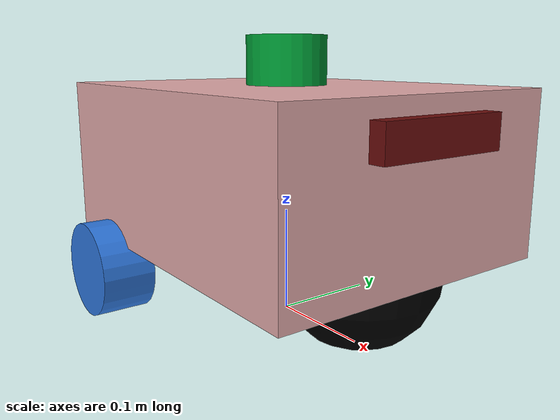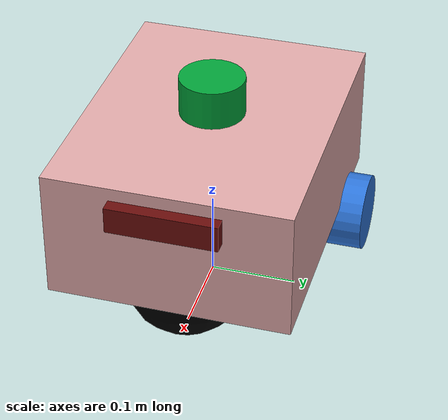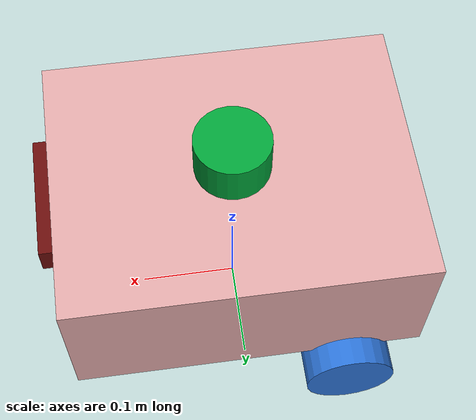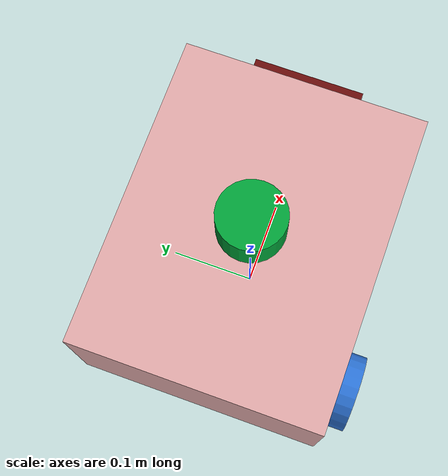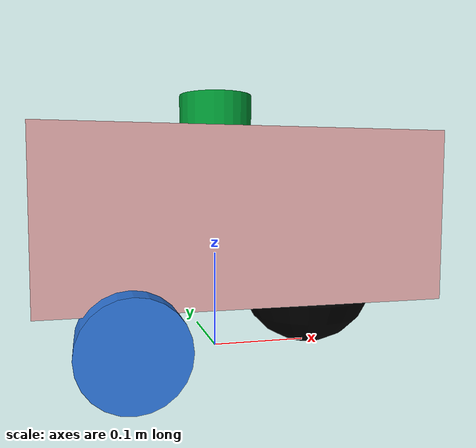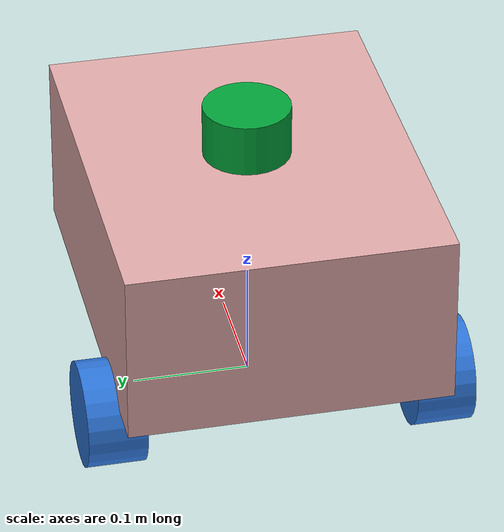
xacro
<?xml version="1.0" ?>
<robot name="robot_1" xmlns:xacro="http://ros.org/wiki/xacro">

  <!-- ===== Properties ===== -->
  <xacro:property name="wheel_mass"   value="0.1"/>
  <xacro:property name="wheel_radius" value="0.045"/>
  <xacro:property name="wheel_length" value="0.05"/>
  <!-- Correct solid-cylinder inertia: axis along Y (after visual rpy="pi/2 0 0") -->
  <xacro:property name="wheel_iperp"
    value="${(wheel_mass/12.0)*(3.0*wheel_radius**2 + wheel_length**2)}"/>
  <xacro:property name="wheel_ispin"
    value="${(wheel_mass/2.0)*wheel_radius**2}"/>

  <!-- ===== Wheel macro ===== -->
  <xacro:macro name="wheel" params="name y_offset">
    <link name="${name}_wheel_link">
      <visual>
        <origin rpy="1.5707963267948966 0 0" xyz="0 0 0"/>
        <geometry>
          <cylinder length="${wheel_length}" radius="${wheel_radius}"/>
        </geometry>
        <material name="blue">
          <color rgba="0.1764 0.4588 0.8509 1.0"/>
        </material>
      </visual>
      <collision>
        <origin rpy="1.5707963267948966 0 0" xyz="0 0 0"/>
        <geometry>
          <cylinder length="${wheel_length}" radius="${wheel_radius}"/>
        </geometry>
      </collision>
      <inertial>
        <origin rpy="0 0 0" xyz="0 0 0"/>
        <mass value="${wheel_mass}"/>
        <!-- ixx=izz = perpendicular axes; iyy = spin axis -->
        <inertia ixx="${wheel_iperp}" ixy="0" ixz="0"
                 iyy="${wheel_ispin}" iyz="0"
                 izz="${wheel_iperp}"/>
      </inertial>
    </link>
    <gazebo reference="${name}_wheel_link">
      <visual>
        <material>
          <ambient>0.1764 0.4588 0.8509 1.0</ambient>
          <diffuse>0.1764 0.4588 0.8509 1.0</diffuse>
          <specular>0.1764 0.4588 0.8509 1.0</specular>
          <emissive>0.0 0.0 0.0 0.0</emissive>
        </material>
      </visual>
    </gazebo>
    <joint name="${name}_wheel_joint" type="continuous">
      <axis xyz="0 1 0"/>
      <parent link="base_link"/>
      <child link="${name}_wheel_link"/>
      <origin rpy="0 0 0" xyz="-0.1 ${y_offset} -0.1"/>
    </joint>
  </xacro:macro>

  <!-- ===== Gazebo sensor plugin ===== -->
  <gazebo>
    <plugin filename="gz-sim-sensors-system" name="gz::sim::systems::Sensors">
      <render_engine>ogre2</render_engine>
    </plugin>
  </gazebo>

  <!-- ===== Base ===== -->
  <link name="base_footprint"/>
  <link name="base_link">
    <visual>
      <origin rpy="0 0 0" xyz="0 0 0"/>
      <geometry>
        <box size="0.35 0.275 0.15"/>
      </geometry>
      <material name="yellow">
        <color rgba="0.8784 0.6627 0.6627 1.0"/>
      </material>
    </visual>
    <collision>
      <origin rpy="0 0 0" xyz="0 0 0"/>
      <geometry>
        <box size="0.35 0.275 0.15"/>
      </geometry>
    </collision>
    <inertial>
      <origin rpy="0 0 0" xyz="0 0 0"/>
      <mass value="1"/>
      <inertia ixx="0.008177083333333335" ixy="0.0" ixz="0.0"
               iyy="0.012083333333333331" iyz="0.0"
               izz="0.016510416666666666"/>
    </inertial>
  </link>
  <gazebo reference="base_link">
    <visual>
      <material>
        <ambient>0.8392 0.6314 0.0 1.0</ambient>
        <diffuse>0.8392 0.6314 0.0 1.0</diffuse>
        <specular>0.99 0.99 0.99 1.0</specular>
        <emissive>0.0 0.0 0.0 0.0</emissive>
      </material>
    </visual>
  </gazebo>
  <joint name="base_to_footprint" type="fixed">
    <parent link="base_footprint"/>
    <child link="base_link"/>
    <origin rpy="0 0 0" xyz="0 0 0.145"/>
  </joint>

  <!-- ===== Wheels (via macro) ===== -->
  <xacro:wheel name="left"  y_offset=" 0.14"/>
  <xacro:wheel name="right" y_offset="-0.14"/>

  <!-- ===== Front caster ===== -->
  <link name="front_caster_wheel_link">
    <visual>
      <origin rpy="0 0 0" xyz="0 0 0"/>
      <geometry>
        <sphere radius="0.0725"/>
      </geometry>
      <material name="black">
        <color rgba="0.0 0.0 0.0 1.0"/>
      </material>
    </visual>
    <collision>
      <origin rpy="0 0 0" xyz="0 0 0"/>
      <geometry>
        <sphere radius="0.0725"/>
      </geometry>
    </collision>
    <inertial>
      <origin rpy="0 0 0" xyz="0 0 0"/>
      <mass value="0.01"/>
      <inertia ixx="2.10125e-05" ixy="0" ixz="0"
               iyy="2.10125e-05" iyz="0"
               izz="2.10125e-05"/>
    </inertial>
  </link>
  <gazebo reference="front_caster_wheel_link">
    <mu1>0.01</mu1>
    <mu2>0.01</mu2>
  </gazebo>
  <joint name="front_caster_wheel_joint" type="fixed">
    <parent link="base_link"/>
    <child link="front_caster_wheel_link"/>
    <origin rpy="0 0 0" xyz="0.1025 0 -0.0725"/>
  </joint>

  <!-- ===== IMU ===== -->
  <link name="imu_link"/>
  <joint name="imu_to_base_link" type="fixed">
    <parent link="base_link"/>
    <child link="imu_link"/>
    <origin rpy="0 0 0" xyz="0 0 0"/>
  </joint>
  <gazebo>
    <plugin filename="gz-sim-imu-system" name="gz::sim::systems::Imu"/>
  </gazebo>
  <gazebo reference="imu_link">
    <sensor name="imu_sensor" type="imu">
      <topic>imu/data</topic>
      <gz_frame_id>imu_link</gz_frame_id>
      <update_rate>50</update_rate>
      <always_on>true</always_on>
      <visualize>true</visualize>
    </sensor>
  </gazebo>

  <!-- ===== LiDAR ===== -->
  <link name="laser">
    <visual>
      <origin rpy="0 0 0" xyz="0 0 -0.025"/>
      <geometry>
        <cylinder length="0.05" radius="0.0375"/>
      </geometry>
      <material name="green">
        <color rgba="0.003 0.639 0.223 1.0"/>
      </material>
    </visual>
    <collision>
      <origin rpy="0 0 0" xyz="0 0 -0.025"/>
      <geometry>
        <cylinder length="0.05" radius="0.0375"/>
      </geometry>
    </collision>
    <inertial>
      <origin rpy="0 0 0" xyz="0 0 0"/>
      <mass value="0.1"/>
      <inertia ixx="5.625e-05" ixy="0" ixz="0"
               iyy="5.625e-05" iyz="0"
               izz="5.625e-05"/>
    </inertial>
  </link>
  <gazebo reference="laser">
    <visual>
      <material>
        <ambient>0.003 0.639 0.223 1.0</ambient>
        <diffuse>0.003 0.639 0.223 1.0</diffuse>
        <specular>0.003 0.639 0.223 1.0</specular>
        <emissive>0.0 0.0 0.0 0.0</emissive>
      </material>
    </visual>
    <sensor name="gpu_lidar" type="gpu_lidar">
      <topic>scan</topic>
      <gz_frame_id>laser</gz_frame_id>
      <update_rate>50</update_rate>
      <always_on>true</always_on>
      <visualize>true</visualize>
      <lidar>
        <scan>
          <horizontal>
            <samples>360</samples>
            <resolution>1</resolution>
            <min_angle>-3.1416</min_angle>
            <max_angle>3.1416</max_angle>
          </horizontal>
          <vertical>
            <samples>1</samples>
            <resolution>1</resolution>
            <min_angle>0.0</min_angle>
            <max_angle>0.0</max_angle>
          </vertical>
        </scan>
        <range>
          <min>0.08</min>
          <max>12.0</max>
          <resolution>0.01</resolution>
        </range>
      </lidar>
    </sensor>
  </gazebo>
  <joint name="laser_to_base_link" type="fixed">
    <parent link="base_link"/>
    <child link="laser"/>
    <origin rpy="0 0 0" xyz="0.0 0 0.12"/>
  </joint>

  <!-- ===== RGBD Camera ===== -->
  <link name="camera_link">
    <visual>
      <origin rpy="0 0 0" xyz="0 0 0"/>
      <geometry>
        <box size="0.030 0.124 0.030"/>
      </geometry>
      <material name="red">
        <color rgba="0.416 0.051 0.047 1.0"/>
      </material>
    </visual>
    <collision>
      <origin rpy="0 0 0" xyz="0 0 0"/>
      <geometry>
        <box size="0.030 0.124 0.030"/>
      </geometry>
    </collision>
    <inertial>
      <origin rpy="0 0 0" xyz="0 0 0"/>
      <mass value="0.135"/>
      <inertia ixx="0.000183105" ixy="0.0" ixz="0.0"
               iyy="2.0250e-05"  iyz="0.0"
               izz="0.000183105"/>
    </inertial>
  </link>
  <gazebo reference="camera_link">
    <visual>
      <material>
        <ambient>0.416 0.051 0.047 1.0</ambient>
        <diffuse>0.416 0.051 0.047 1.0</diffuse>
        <specular>0.416 0.051 0.047 1.0</specular>
        <emissive>0.416 0.051 0.047 1.0</emissive>
      </material>
    </visual>
    <sensor name="camera" type="rgbd_camera">
      <topic>camera</topic>
      <gz_frame_id>camera_link</gz_frame_id>
      <update_rate>30.0</update_rate>
      <always_on>true</always_on>
      <visualize>true</visualize>
      <camera>
        <optical_frame_id>camera_depth_link</optical_frame_id>
        <horizontal_fov>1.50098</horizontal_fov>
        <image>
          <width>640</width>
          <height>480</height>
          <format>R8G8B8</format>
        </image>
        <clip>
          <near>0.3</near>
          <far>100</far>
        </clip>
      </camera>
    </sensor>
  </gazebo>
  <joint name="camera_to_base_link" type="fixed">
    <parent link="base_link"/>
    <child link="camera_link"/>
    <origin rpy="0 0 0" xyz="0.175 0.0 0.045"/>
  </joint>
  <link name="camera_depth_link"/>
  <joint name="camera_depth_joint" type="fixed">
    <origin rpy="0 0 0" xyz="0 0 0"/>
    <parent link="camera_link"/>
    <child link="camera_depth_link"/>
  </joint>

  <!-- ===== Differential drive plugin ===== -->
  <gazebo>
    <plugin filename="gz-sim-diff-drive-system" name="gz::sim::systems::DiffDrive">
      <topic>cmd_vel</topic>
      <frame_id>odom</frame_id>
      <child_frame_id>base_footprint</child_frame_id>
      <odom_topic>odom/unfiltered</odom_topic>
      <left_joint>left_wheel_joint</left_joint>
      <right_joint>right_wheel_joint</right_joint>
      <wheel_separation>0.28</wheel_separation>
      <wheel_radius>${wheel_radius}</wheel_radius>
      <odom_publish_frequency>50</odom_publish_frequency>
      <tf_topic>/tf</tf_topic>
    </plugin>
  </gazebo>

  <!-- ===== Joint state publisher plugin ===== -->
  <gazebo>
    <plugin filename="gz-sim-joint-state-publisher-system"
            name="gz::sim::systems::JointStatePublisher">
      <topic>joint_states</topic>
      <update_rate>30</update_rate>
      <joint_name>left_wheel_joint</joint_name>
      <joint_name>right_wheel_joint</joint_name>
    </plugin>
  </gazebo>

</robot>
